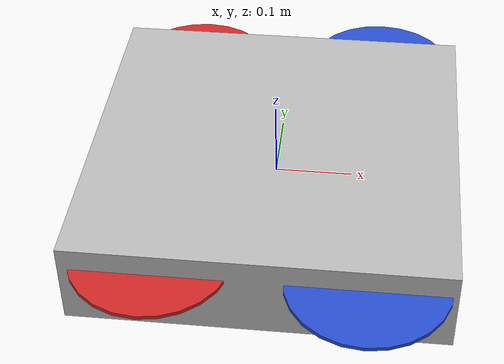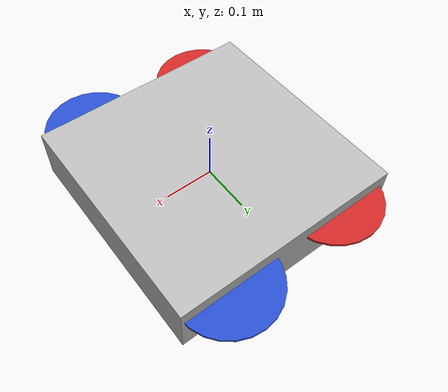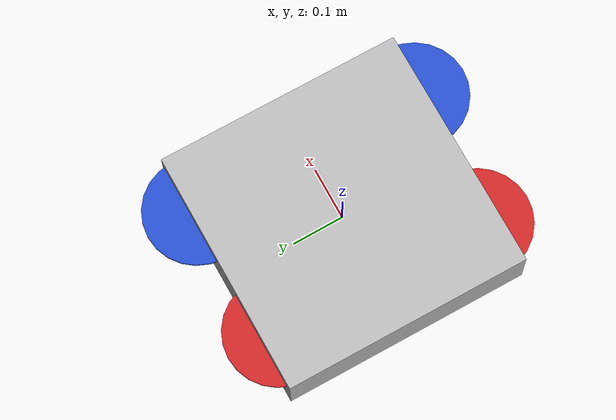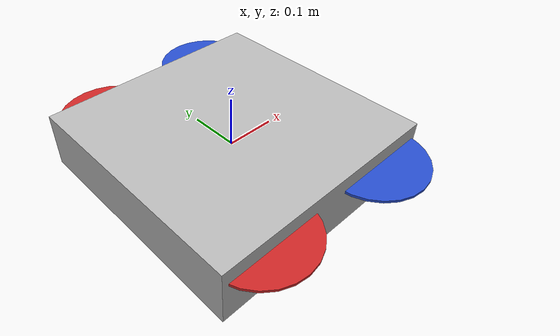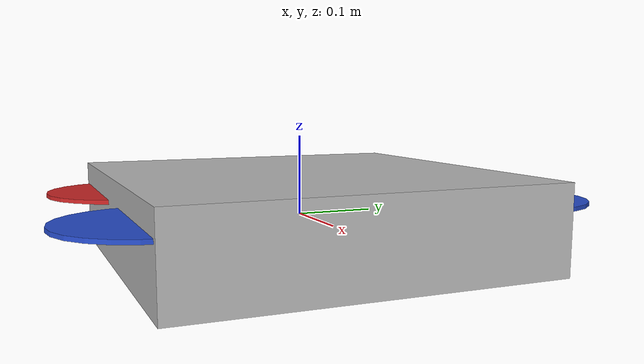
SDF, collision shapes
<sdf version='1.7'>
  <model name='iris'>
    <link name='uav0/base_link'>
      <inertial>
        <pose>0.007977 0 -0.002393 0 -0 0</pose>
        <mass>1.63003</mass>
        <inertia>
          <ixx>0.0348681</ixx>
          <ixy>-5.91781e-08</ixy>
          <ixz>0.000358969</ixz>
          <iyy>0.0472013</iyy>
          <iyz>1.24503e-08</iyz>
          <izz>0.0989008</izz>
        </inertia>
      </inertial>
      <collision name='uav0/base_link_inertia_collision'>
        <pose>0 0 0 0 -0 0</pose>
        <geometry>
          <box>
            <size>0.47 0.47 0.11</size>
          </box>
        </geometry>
      </collision>
      <collision name='uav0/base_link_fixed_joint_lump__uav0/vi_sensor/vi_sensor_link_collision_1'>
        <pose>0.1 0 -0.03 0 0.1 0</pose>
        <geometry>
          <box>
            <size>0.03 0.133 0.057</size>
          </box>
        </geometry>
      </collision>
      <collision name='uav0/base_link_fixed_joint_lump__uav0/vi_sensor/camera_depth_link_collision_2'>
        <pose>0.115574 0.055 -0.02503 0 0.1 0</pose>
        <geometry>
          <cylinder>
            <length>0.01</length>
            <radius>0.007</radius>
          </cylinder>
        </geometry>
        <surface>
          <contact>
            <ode/>
          </contact>
          <friction>
            <ode/>
          </friction>
        </surface>
      </collision>
      <collision name='uav0/base_link_fixed_joint_lump__uav0/vi_sensor/camera_left_link_collision_3'>
        <pose>0.115574 0.055 -0.02503 0 0.1 0</pose>
        <geometry>
          <cylinder>
            <length>0.01</length>
            <radius>0.007</radius>
          </cylinder>
        </geometry>
        <surface>
          <contact>
            <ode/>
          </contact>
          <friction>
            <ode/>
          </friction>
        </surface>
      </collision>
      <collision name='uav0/base_link_fixed_joint_lump__uav0/vi_sensor/camera_right_link_collision_4'>
        <pose>0.115574 -0.055 -0.02503 0 0.1 0</pose>
        <geometry>
          <cylinder>
            <length>0.01</length>
            <radius>0.007</radius>
          </cylinder>
        </geometry>
      </collision>
      <visual name='uav0/base_link_inertia_visual'>
        <pose>0 0 0 0 -0 0</pose>
        <geometry>
          <mesh>
            <scale>1 1 1</scale>
            <uri>model://iris_description/meshes/iris.dae</uri>
          </mesh>
        </geometry>
      </visual>
      <visual name='uav0/base_link_fixed_joint_lump__uav0/vi_sensor/vi_sensor_link_visual_1'>
        <pose>0.1 0 -0.03 0 0.1 0</pose>
        <geometry>
          <mesh>
            <scale>1 1 1</scale>
            <uri>model://iris_description/meshes/vi_sensor.dae</uri>
          </mesh>
        </geometry>
      </visual>
      <sensor name='uav0/vi_sensor_camera_{camera_suffix}' type='depth'>
        <always_on>1</always_on>
        <update_rate>30</update_rate>
        <camera>
          <horizontal_fov>2</horizontal_fov>
          <image>
            <format>L8</format>
            <width>640</width>
            <height>480</height>
          </image>
          <clip>
            <near>0.01</near>
            <far>10</far>
          </clip>
        </camera>
        <plugin name='uav0/vi_sensor_camera_{camera_suffix}' filename='libgazebo_ros_openni_kinect.so'>
          <robotNamespace>uav0/vi_sensor</robotNamespace>
          <alwaysOn>1</alwaysOn>
          <baseline>0.11</baseline>
          <updateRate>30.0</updateRate>
          <cameraName>camera_depth</cameraName>
          <imageTopicName>camera/image_raw</imageTopicName>
          <cameraInfoTopicName>camera/camera_info</cameraInfoTopicName>
          <depthImageTopicName>depth/disparity</depthImageTopicName>
          <depthImageCameraInfoTopicName>depth/camera_info</depthImageCameraInfoTopicName>
          <pointCloudTopicName>depth/points</pointCloudTopicName>
          <frameName>camera_depth_optical_center_link</frameName>
          <pointCloudCutoff>0.5</pointCloudCutoff>
          <pointCloudCutoffMax>10.0</pointCloudCutoffMax>
          <distortionK1>0.0</distortionK1>
          <distortionK2>0.0</distortionK2>
          <distortionK3>0.0</distortionK3>
          <distortionT1>0.0</distortionT1>
          <distortionT2>0.0</distortionT2>
        </plugin>
        <pose>0.115574 0.055 -0.02503 0 0.1 0</pose>
      </sensor>
      <sensor name='uav0/vi_sensor_stereo_camera' type='multicamera'>
        <update_rate>30</update_rate>
        <camera name='left'>
          <pose>0 0 0 0 -0 0</pose>
          <horizontal_fov>1.39626</horizontal_fov>
          <image>
            <width>752</width>
            <height>480</height>
            <format>L8</format>
          </image>
          <clip>
            <near>0.02</near>
            <far>30</far>
          </clip>
          <noise>
            <type>gaussian</type>
            <mean>0</mean>
            <stddev>0.007</stddev>
          </noise>
        </camera>
        <camera name='right'>
          <pose>0 -0.11 0 0 -0 0</pose>
          <horizontal_fov>1.39626</horizontal_fov>
          <image>
            <width>752</width>
            <height>480</height>
            <format>L8</format>
          </image>
          <clip>
            <near>0.02</near>
            <far>30</far>
          </clip>
          <noise>
            <type>gaussian</type>
            <mean>0</mean>
            <stddev>0.007</stddev>
          </noise>
        </camera>
        <plugin name='uav0/vi_sensor_stereo_camera_controller' filename='libgazebo_ros_multicamera.so'>
          <alwaysOn>1</alwaysOn>
          <updateRate>0.0</updateRate>
          <cameraName>vi_sensor</cameraName>
          <imageTopicName>image_raw</imageTopicName>
          <cameraInfoTopicName>camera_info</cameraInfoTopicName>
          <frameName>vi_sensor/camera_left_link</frameName>
          <hackBaseline>0.11</hackBaseline>
          <distortionK1>0.0</distortionK1>
          <distortionK2>0.0</distortionK2>
          <distortionK3>0.0</distortionK3>
          <distortionT1>0.0</distortionT1>
          <distortionT2>0.0</distortionT2>
        </plugin>
        <pose>0.115574 0.055 -0.02503 0 0.1 0</pose>
      </sensor>
    </link>
    <joint name='uav0/imu_joint' type='revolute'>
      <pose relative_to='uav0/base_link'>0 0 0 0 -0 0</pose>
      <parent>uav0/base_link</parent>
      <child>uav0/imu_link</child>
      <axis>
        <xyz>1 0 0</xyz>
        <limit>
          <lower>0</lower>
          <upper>0</upper>
          <effort>0</effort>
          <velocity>0</velocity>
        </limit>
        <dynamics>
          <spring_reference>0</spring_reference>
          <spring_stiffness>0</spring_stiffness>
        </dynamics>
      </axis>
    </joint>
    <link name='uav0/imu_link'>
      <pose relative_to='uav0/imu_joint'>0 0 0 0 -0 0</pose>
      <inertial>
        <pose>0 0 0 0 -0 0</pose>
        <mass>0.015</mass>
        <inertia>
          <ixx>1e-05</ixx>
          <ixy>0</ixy>
          <ixz>0</ixz>
          <iyy>1e-05</iyy>
          <iyz>0</iyz>
          <izz>1e-05</izz>
        </inertia>
      </inertial>
    </link>
    <joint name='uav0/imugt_joint' type='revolute'>
      <pose relative_to='uav0/base_link'>0 0 0 0 -0 0</pose>
      <parent>uav0/base_link</parent>
      <child>uav0/imugt_link</child>
      <axis>
        <xyz>1 0 0</xyz>
        <limit>
          <lower>0</lower>
          <upper>0</upper>
          <effort>0</effort>
          <velocity>0</velocity>
        </limit>
        <dynamics>
          <spring_reference>0</spring_reference>
          <spring_stiffness>0</spring_stiffness>
        </dynamics>
      </axis>
    </joint>
    <link name='uav0/imugt_link'>
      <pose relative_to='uav0/imugt_joint'>0 0 0 0 -0 0</pose>
      <inertial>
        <pose>0 0 0 0 -0 0</pose>
        <mass>1e-05</mass>
        <inertia>
          <ixx>1e-05</ixx>
          <ixy>0</ixy>
          <ixz>0</ixz>
          <iyy>1e-05</iyy>
          <iyz>0</iyz>
          <izz>1e-05</izz>
        </inertia>
      </inertial>
    </link>
    <joint name='uav0/odometry_sensor1_joint' type='revolute'>
      <pose relative_to='uav0/base_link'>0 0 0 0 -0 0</pose>
      <parent>uav0/base_link</parent>
      <child>uav0/odometry_sensor1_link</child>
      <axis>
        <xyz>1 0 0</xyz>
        <limit>
          <lower>0</lower>
          <upper>0</upper>
          <effort>0</effort>
          <velocity>0</velocity>
        </limit>
        <dynamics>
          <spring_reference>0</spring_reference>
          <spring_stiffness>0</spring_stiffness>
        </dynamics>
      </axis>
    </joint>
    <link name='uav0/odometry_sensor1_link'>
      <pose relative_to='uav0/odometry_sensor1_joint'>0 0 0 0 -0 0</pose>
      <inertial>
        <pose>0 0 0 0 -0 0</pose>
        <mass>1e-05</mass>
        <inertia>
          <ixx>1e-05</ixx>
          <ixy>0</ixy>
          <ixz>0</ixz>
          <iyy>1e-05</iyy>
          <iyz>0</iyz>
          <izz>1e-05</izz>
        </inertia>
      </inertial>
    </link>
    <joint name='uav0/odometry_sensorgt_joint' type='revolute'>
      <pose relative_to='uav0/base_link'>0 0 0 0 -0 0</pose>
      <parent>uav0/base_link</parent>
      <child>uav0/odometry_sensorgt_link</child>
      <axis>
        <xyz>1 0 0</xyz>
        <limit>
          <lower>0</lower>
          <upper>0</upper>
          <effort>0</effort>
          <velocity>0</velocity>
        </limit>
        <dynamics>
          <spring_reference>0</spring_reference>
          <spring_stiffness>0</spring_stiffness>
        </dynamics>
      </axis>
    </joint>
    <link name='uav0/odometry_sensorgt_link'>
      <pose relative_to='uav0/odometry_sensorgt_joint'>0 0 0 0 -0 0</pose>
      <inertial>
        <pose>0 0 0 0 -0 0</pose>
        <mass>1e-05</mass>
        <inertia>
          <ixx>1e-05</ixx>
          <ixy>0</ixy>
          <ixz>0</ixz>
          <iyy>1e-05</iyy>
          <iyz>0</iyz>
          <izz>1e-05</izz>
        </inertia>
      </inertial>
    </link>
    <joint name='uav0/rotor_0_joint' type='revolute'>
      <pose relative_to='uav0/base_link'>0.13 -0.22 0.023 0 -0 0</pose>
      <parent>uav0/base_link</parent>
      <child>uav0/rotor_0</child>
      <axis>
        <xyz>0 0 1</xyz>
        <limit>
          <lower>-1e+16</lower>
          <upper>1e+16</upper>
        </limit>
        <dynamics>
          <spring_reference>0</spring_reference>
          <spring_stiffness>0</spring_stiffness>
        </dynamics>
      </axis>
    </joint>
    <link name='uav0/rotor_0'>
      <pose relative_to='uav0/rotor_0_joint'>0 0 0 0 -0 0</pose>
      <inertial>
        <pose>0 0 0 0 -0 0</pose>
        <mass>0.005</mass>
        <inertia>
          <ixx>9.75e-07</ixx>
          <ixy>0</ixy>
          <ixz>0</ixz>
          <iyy>4.17041e-05</iyy>
          <iyz>0</iyz>
          <izz>4.26041e-05</izz>
        </inertia>
      </inertial>
      <collision name='uav0/rotor_0_collision'>
        <pose>0 0 0 0 -0 0</pose>
        <geometry>
          <cylinder>
            <length>0.005</length>
            <radius>0.1</radius>
          </cylinder>
        </geometry>
        <surface>
          <contact>
            <ode/>
          </contact>
          <friction>
            <ode/>
          </friction>
        </surface>
      </collision>
      <visual name='uav0/rotor_0_visual'>
        <pose>0 0 0 0 -0 0</pose>
        <geometry>
          <mesh>
            <scale>0.1 0.1 0.1</scale>
            <uri>model://iris_description/meshes/propeller_ccw.dae</uri>
          </mesh>
        </geometry>
        <material>
          <script>
            <name>Gazebo/Blue</name>
            <uri>file://media/materials/scripts/gazebo.material</uri>
          </script>
        </material>
      </visual>
    </link>
    <joint name='uav0/rotor_1_joint' type='revolute'>
      <pose relative_to='uav0/base_link'>-0.13 0.2 0.023 0 -0 0</pose>
      <parent>uav0/base_link</parent>
      <child>uav0/rotor_1</child>
      <axis>
        <xyz>0 0 1</xyz>
        <limit>
          <lower>-1e+16</lower>
          <upper>1e+16</upper>
        </limit>
        <dynamics>
          <spring_reference>0</spring_reference>
          <spring_stiffness>0</spring_stiffness>
        </dynamics>
      </axis>
    </joint>
    <link name='uav0/rotor_1'>
      <pose relative_to='uav0/rotor_1_joint'>0 0 0 0 -0 0</pose>
      <inertial>
        <pose>0 0 0 0 -0 0</pose>
        <mass>0.005</mass>
        <inertia>
          <ixx>9.75e-07</ixx>
          <ixy>0</ixy>
          <ixz>0</ixz>
          <iyy>4.17041e-05</iyy>
          <iyz>0</iyz>
          <izz>4.26041e-05</izz>
        </inertia>
      </inertial>
      <collision name='uav0/rotor_1_collision'>
        <pose>0 0 0 0 -0 0</pose>
        <geometry>
          <cylinder>
            <length>0.005</length>
            <radius>0.1</radius>
          </cylinder>
        </geometry>
        <surface>
          <contact>
            <ode/>
          </contact>
          <friction>
            <ode/>
          </friction>
        </surface>
      </collision>
      <visual name='uav0/rotor_1_visual'>
        <pose>0 0 0 0 -0 0</pose>
        <geometry>
          <mesh>
            <scale>0.1 0.1 0.1</scale>
            <uri>model://iris_description/meshes/propeller_ccw.dae</uri>
          </mesh>
        </geometry>
        <material>
          <script>
            <name>Gazebo/Red</name>
            <uri>file://media/materials/scripts/gazebo.material</uri>
          </script>
        </material>
      </visual>
    </link>
    <joint name='uav0/rotor_2_joint' type='revolute'>
      <pose relative_to='uav0/base_link'>0.13 0.22 0.023 0 -0 0</pose>
      <parent>uav0/base_link</parent>
      <child>uav0/rotor_2</child>
      <axis>
        <xyz>0 0 1</xyz>
        <limit>
          <lower>-1e+16</lower>
          <upper>1e+16</upper>
        </limit>
        <dynamics>
          <spring_reference>0</spring_reference>
          <spring_stiffness>0</spring_stiffness>
        </dynamics>
      </axis>
    </joint>
    <link name='uav0/rotor_2'>
      <pose relative_to='uav0/rotor_2_joint'>0 0 0 0 -0 0</pose>
      <inertial>
        <pose>0 0 0 0 -0 0</pose>
        <mass>0.005</mass>
        <inertia>
          <ixx>9.75e-07</ixx>
          <ixy>0</ixy>
          <ixz>0</ixz>
          <iyy>4.17041e-05</iyy>
          <iyz>0</iyz>
          <izz>4.26041e-05</izz>
        </inertia>
      </inertial>
      <collision name='uav0/rotor_2_collision'>
        <pose>0 0 0 0 -0 0</pose>
        <geometry>
          <cylinder>
            <length>0.005</length>
            <radius>0.1</radius>
          </cylinder>
        </geometry>
        <surface>
          <contact>
            <ode/>
          </contact>
          <friction>
            <ode/>
          </friction>
        </surface>
      </collision>
      <visual name='uav0/rotor_2_visual'>
        <pose>0 0 0 0 -0 0</pose>
        <geometry>
          <mesh>
            <scale>0.1 0.1 0.1</scale>
            <uri>model://iris_description/meshes/propeller_cw.dae</uri>
          </mesh>
        </geometry>
        <material>
          <script>
            <name>Gazebo/Blue</name>
            <uri>file://media/materials/scripts/gazebo.material</uri>
          </script>
        </material>
      </visual>
    </link>
    <joint name='uav0/rotor_3_joint' type='revolute'>
      <pose relative_to='uav0/base_link'>-0.13 -0.2 0.023 0 -0 0</pose>
      <parent>uav0/base_link</parent>
      <child>uav0/rotor_3</child>
      <axis>
        <xyz>0 0 1</xyz>
        <limit>
          <lower>-1e+16</lower>
          <upper>1e+16</upper>
        </limit>
        <dynamics>
          <spring_reference>0</spring_reference>
          <spring_stiffness>0</spring_stiffness>
        </dynamics>
      </axis>
    </joint>
    <link name='uav0/rotor_3'>
      <pose relative_to='uav0/rotor_3_joint'>0 0 0 0 -0 0</pose>
      <inertial>
        <pose>0 0 0 0 -0 0</pose>
        <mass>0.005</mass>
        <inertia>
          <ixx>9.75e-07</ixx>
          <ixy>0</ixy>
          <ixz>0</ixz>
          <iyy>4.17041e-05</iyy>
          <iyz>0</iyz>
          <izz>4.26041e-05</izz>
        </inertia>
      </inertial>
      <collision name='uav0/rotor_3_collision'>
        <pose>0 0 0 0 -0 0</pose>
        <geometry>
          <cylinder>
            <length>0.005</length>
            <radius>0.1</radius>
          </cylinder>
        </geometry>
        <surface>
          <contact>
            <ode/>
          </contact>
          <friction>
            <ode/>
          </friction>
        </surface>
      </collision>
      <visual name='uav0/rotor_3_visual'>
        <pose>0 0 0 0 -0 0</pose>
        <geometry>
          <mesh>
            <scale>0.1 0.1 0.1</scale>
            <uri>model://iris_description/meshes/propeller_cw.dae</uri>
          </mesh>
        </geometry>
        <material>
          <script>
            <name>Gazebo/Red</name>
            <uri>file://media/materials/scripts/gazebo.material</uri>
          </script>
        </material>
      </visual>
    </link>
    <joint name='uav0/vi_sensor/ground_truth/odometry_sensor_joint' type='revolute'>
      <pose relative_to='uav0/base_link'>0.1 0 -0.03 0 0.1 0</pose>
      <parent>uav0/base_link</parent>
      <child>uav0/vi_sensor/ground_truth/odometry_sensor_link</child>
      <axis>
        <xyz>1 0 0</xyz>
        <limit>
          <lower>0</lower>
          <upper>0</upper>
          <effort>0</effort>
          <velocity>0</velocity>
        </limit>
        <dynamics>
          <spring_reference>0</spring_reference>
          <spring_stiffness>0</spring_stiffness>
        </dynamics>
      </axis>
    </joint>
    <link name='uav0/vi_sensor/ground_truth/odometry_sensor_link'>
      <pose relative_to='uav0/vi_sensor/ground_truth/odometry_sensor_joint'>0 0 0 0 -0 0</pose>
      <inertial>
        <pose>0 0 0 0 -0 0</pose>
        <mass>1e-05</mass>
        <inertia>
          <ixx>1e-05</ixx>
          <ixy>0</ixy>
          <ixz>0</ixz>
          <iyy>1e-05</iyy>
          <iyz>0</iyz>
          <izz>1e-05</izz>
        </inertia>
      </inertial>
    </link>
    <joint name='uav0/vi_sensor/imu_joint' type='revolute'>
      <pose relative_to='uav0/base_link'>0.116053 0 -0.020254 0 0.1 0</pose>
      <parent>uav0/base_link</parent>
      <child>uav0/vi_sensor/imu_link</child>
      <axis>
        <xyz>1 0 0</xyz>
        <limit>
          <lower>0</lower>
          <upper>0</upper>
          <effort>0</effort>
          <velocity>0</velocity>
        </limit>
        <dynamics>
          <spring_reference>0</spring_reference>
          <spring_stiffness>0</spring_stiffness>
        </dynamics>
      </axis>
    </joint>
    <link name='uav0/vi_sensor/imu_link'>
      <pose relative_to='uav0/vi_sensor/imu_joint'>0 0 0 0 -0 0</pose>
      <inertial>
        <pose>0 0 0 0 -0 0</pose>
        <mass>0.015</mass>
        <inertia>
          <ixx>1e-05</ixx>
          <ixy>0</ixy>
          <ixz>0</ixz>
          <iyy>1e-05</iyy>
          <iyz>0</iyz>
          <izz>1e-05</izz>
        </inertia>
      </inertial>
    </link>
    <plugin name='uav0/rotor_0_blade_1' filename='libLiftDragPlugin.so'>
      <a0>0.3</a0>
      <alpha_stall>1.4</alpha_stall>
      <cla>4.2500</cla>
      <cda>0.10</cda>
      <cma>0.00</cma>
      <cla_stall>-0.025</cla_stall>
      <cda_stall>0.0</cda_stall>
      <cma_stall>0.0</cma_stall>
      <area>0.002</area>
      <air_density>1.2041</air_density>
      <cp>0.084 0 0</cp>
      <forward>0 1 0</forward>
      <upward>0 0 1</upward>
      <link_name>uav0::uav0/rotor_0</link_name>
    </plugin>
    <plugin name='uav0/rotor_0_blade_2' filename='libLiftDragPlugin.so'>
      <a0>0.3</a0>
      <alpha_stall>1.4</alpha_stall>
      <cla>4.2500</cla>
      <cda>0.10</cda>
      <cma>0.00</cma>
      <cla_stall>-0.025</cla_stall>
      <cda_stall>0.0</cda_stall>
      <cma_stall>0.0</cma_stall>
      <area>0.002</area>
      <air_density>1.2041</air_density>
      <cp>-0.084 0 0</cp>
      <forward>0 -1 0</forward>
      <upward>0 0 1</upward>
      <link_name>uav0::uav0/rotor_0</link_name>
    </plugin>
    <plugin name='uav0/rotor_1_blade_1' filename='libLiftDragPlugin.so'>
      <a0>0.3</a0>
      <alpha_stall>1.4</alpha_stall>
      <cla>4.2500</cla>
      <cda>0.10</cda>
      <cma>0.00</cma>
      <cla_stall>-0.025</cla_stall>
      <cda_stall>0.0</cda_stall>
      <cma_stall>0.0</cma_stall>
      <area>0.002</area>
      <air_density>1.2041</air_density>
      <cp>0.084 0 0</cp>
      <forward>0 1 0</forward>
      <upward>0 0 1</upward>
      <link_name>uav0::uav0/rotor_1</link_name>
    </plugin>
    <plugin name='uav0/rotor_1_blade_2' filename='libLiftDragPlugin.so'>
      <a0>0.3</a0>
      <alpha_stall>1.4</alpha_stall>
      <cla>4.2500</cla>
      <cda>0.10</cda>
      <cma>0.00</cma>
      <cla_stall>-0.025</cla_stall>
      <cda_stall>0.0</cda_stall>
      <cma_stall>0.0</cma_stall>
      <area>0.002</area>
      <air_density>1.2041</air_density>
      <cp>-0.084 0 0</cp>
      <forward>0 -1 0</forward>
      <upward>0 0 1</upward>
      <link_name>uav0::uav0/rotor_1</link_name>
    </plugin>
    <plugin name='uav0/rotor_2_blade_1' filename='libLiftDragPlugin.so'>
      <a0>0.3</a0>
      <alpha_stall>1.4</alpha_stall>
      <cla>4.2500</cla>
      <cda>0.10</cda>
      <cma>0.00</cma>
      <cla_stall>-0.025</cla_stall>
      <cda_stall>0.0</cda_stall>
      <cma_stall>0.0</cma_stall>
      <area>0.002</area>
      <air_density>1.2041</air_density>
      <cp>0.084 0 0</cp>
      <forward>0 1 0</forward>
      <upward>0 0 1</upward>
      <link_name>uav0::uav0/rotor_2</link_name>
    </plugin>
    <plugin name='uav0/rotor_2_blade_2' filename='libLiftDragPlugin.so'>
      <a0>0.3</a0>
      <alpha_stall>1.4</alpha_stall>
      <cla>4.2500</cla>
      <cda>0.10</cda>
      <cma>0.00</cma>
      <cla_stall>-0.025</cla_stall>
      <cda_stall>0.0</cda_stall>
      <cma_stall>0.0</cma_stall>
      <area>0.002</area>
      <air_density>1.2041</air_density>
      <cp>-0.084 0 0</cp>
      <forward>0 -1 0</forward>
      <upward>0 0 1</upward>
      <link_name>uav0::uav0/rotor_2</link_name>
    </plugin>
    <plugin name='uav0/rotor_3_blade_1' filename='libLiftDragPlugin.so'>
      <a0>0.3</a0>
      <alpha_stall>1.4</alpha_stall>
      <cla>4.2500</cla>
      <cda>0.10</cda>
      <cma>0.00</cma>
      <cla_stall>-0.025</cla_stall>
      <cda_stall>0.0</cda_stall>
      <cma_stall>0.0</cma_stall>
      <area>0.002</area>
      <air_density>1.2041</air_density>
      <cp>0.084 0 0</cp>
      <forward>0 1 0</forward>
      <upward>0 0 1</upward>
      <link_name>uav0::uav0/rotor_3</link_name>
    </plugin>
    <plugin name='uav0/rotor_3_blade_2' filename='libLiftDragPlugin.so'>
      <a0>0.3</a0>
      <alpha_stall>1.4</alpha_stall>
      <cla>4.2500</cla>
      <cda>0.10</cda>
      <cma>0.00</cma>
      <cla_stall>-0.025</cla_stall>
      <cda_stall>0.0</cda_stall>
      <cma_stall>0.0</cma_stall>
      <area>0.002</area>
      <air_density>1.2041</air_density>
      <cp>-0.084 0 0</cp>
      <forward>0 -1 0</forward>
      <upward>0 0 1</upward>
      <link_name>uav0::uav0/rotor_3</link_name>
    </plugin>
    <plugin name='odometry_sensor1' filename='librotors_gazebo_odometry_plugin.so'>
      <linkName>uav0/odometry_sensor1_link</linkName>
      <robotNamespace>uav0</robotNamespace>
      <poseTopic>odometry_sensor1/pose</poseTopic>
      <poseWithCovarianceTopic>odometry_sensor1/pose_with_covariance</poseWithCovarianceTopic>
      <positionTopic>odometry_sensor1/position</positionTopic>
      <transformTopic>odometry_sensor1/transform</transformTopic>
      <odometryTopic>odometry_sensor1/odometry</odometryTopic>
      <parentFrameId>world</parentFrameId>
      <childFrameId>uav0/odometry_sensor1</childFrameId>
      <measurementDivisor>1</measurementDivisor>
      <measurementDelay>0</measurementDelay>
      <unknownDelay>0.0</unknownDelay>
      <noiseNormalPosition>0 0 0</noiseNormalPosition>
      <noiseNormalQuaternion>0 0 0</noiseNormalQuaternion>
      <noiseNormalLinearVelocity>0 0 0</noiseNormalLinearVelocity>
      <noiseNormalAngularVelocity>0 0 0</noiseNormalAngularVelocity>
      <noiseUniformPosition>0 0 0</noiseUniformPosition>
      <noiseUniformQuaternion>0 0 0</noiseUniformQuaternion>
      <noiseUniformLinearVelocity>0 0 0</noiseUniformLinearVelocity>
      <noiseUniformAngularVelocity>0 0 0</noiseUniformAngularVelocity>
    </plugin>
    <plugin name='odometry_sensor' filename='librotors_gazebo_odometry_plugin.so'>
      <linkName>uav0/vi_sensor/ground_truth/odometry_sensor_link</linkName>
      <robotNamespace>uav0/vi_sensor/ground_truth</robotNamespace>
      <poseTopic>pose</poseTopic>
      <poseWithCovarianceTopic>pose_with_covariance</poseWithCovarianceTopic>
      <positionTopic>position</positionTopic>
      <transformTopic>transform</transformTopic>
      <odometryTopic>odometry</odometryTopic>
      <parentFrameId>world</parentFrameId>
      <childFrameId>uav0/vi_sensor/base_link</childFrameId>
      <measurementDivisor>1</measurementDivisor>
      <measurementDelay>0</measurementDelay>
      <unknownDelay>0.0</unknownDelay>
      <noiseNormalPosition>0 0 0</noiseNormalPosition>
      <noiseNormalQuaternion>0 0 0</noiseNormalQuaternion>
      <noiseNormalLinearVelocity>0 0 0</noiseNormalLinearVelocity>
      <noiseNormalAngularVelocity>0 0 0</noiseNormalAngularVelocity>
      <noiseUniformPosition>0 0 0</noiseUniformPosition>
      <noiseUniformQuaternion>0 0 0</noiseUniformQuaternion>
      <noiseUniformLinearVelocity>0 0 0</noiseUniformLinearVelocity>
      <noiseUniformAngularVelocity>0 0 0</noiseUniformAngularVelocity>
    </plugin>
    <plugin name='rotors_gazebo_imu_plugin' filename='librotors_gazebo_imu_plugin.so'>
      <robotNamespace>uav0/vi_sensor</robotNamespace>
      <linkName>uav0/vi_sensor/imu_link</linkName>
      <imuTopic>imu</imuTopic>
      <gyroscopeNoiseDensity>0.0003394</gyroscopeNoiseDensity>
      <gyroscopeRandomWalk>3.8785e-05</gyroscopeRandomWalk>
      <gyroscopeBiasCorrelationTime>1000.0</gyroscopeBiasCorrelationTime>
      <gyroscopeTurnOnBiasSigma>0.0087</gyroscopeTurnOnBiasSigma>
      <accelerometerNoiseDensity>0.004</accelerometerNoiseDensity>
      <accelerometerRandomWalk>0.006</accelerometerRandomWalk>
      <accelerometerBiasCorrelationTime>300.0</accelerometerBiasCorrelationTime>
      <accelerometerTurnOnBiasSigma>0.196</accelerometerTurnOnBiasSigma>
    </plugin>
    <plugin name='rotors_gazebo_imu_plugin' filename='librotors_gazebo_imu_plugin.so'>
      <robotNamespace>uav0</robotNamespace>
      <linkName>uav0/imu_link</linkName>
      <imuTopic>imu</imuTopic>
      <gyroscopeNoiseDensity>0.0003394</gyroscopeNoiseDensity>
      <gyroscopeRandomWalk>3.8785e-05</gyroscopeRandomWalk>
      <gyroscopeBiasCorrelationTime>1000.0</gyroscopeBiasCorrelationTime>
      <gyroscopeTurnOnBiasSigma>0.0087</gyroscopeTurnOnBiasSigma>
      <accelerometerNoiseDensity>0.004</accelerometerNoiseDensity>
      <accelerometerRandomWalk>0.006</accelerometerRandomWalk>
      <accelerometerBiasCorrelationTime>300.0</accelerometerBiasCorrelationTime>
      <accelerometerTurnOnBiasSigma>0.196</accelerometerTurnOnBiasSigma>
    </plugin>
    <plugin name='rotors_gazebo_imugt_plugin' filename='librotors_gazebo_imu_plugin.so'>
      <robotNamespace>uav0</robotNamespace>
      <linkName>uav0/imugt_link</linkName>
      <imuTopic>ground_truth/imu</imuTopic>
      <gyroscopeNoiseDensity>0.0</gyroscopeNoiseDensity>
      <gyroscopeRandomWalk>0.0</gyroscopeRandomWalk>
      <gyroscopeBiasCorrelationTime>1000.0</gyroscopeBiasCorrelationTime>
      <gyroscopeTurnOnBiasSigma>0.0</gyroscopeTurnOnBiasSigma>
      <accelerometerNoiseDensity>0.0</accelerometerNoiseDensity>
      <accelerometerRandomWalk>0.0</accelerometerRandomWalk>
      <accelerometerBiasCorrelationTime>300.0</accelerometerBiasCorrelationTime>
      <accelerometerTurnOnBiasSigma>0.0</accelerometerTurnOnBiasSigma>
    </plugin>
    <plugin name='odometry_sensorgt' filename='librotors_gazebo_odometry_plugin.so'>
      <linkName>uav0/odometry_sensorgt_link</linkName>
      <robotNamespace>uav0</robotNamespace>
      <poseTopic>ground_truth/pose</poseTopic>
      <poseWithCovarianceTopic>ground_truth/pose_with_covariance</poseWithCovarianceTopic>
      <positionTopic>ground_truth/position</positionTopic>
      <transformTopic>ground_truth/transform</transformTopic>
      <odometryTopic>ground_truth/odometry</odometryTopic>
      <parentFrameId>world</parentFrameId>
      <childFrameId>uav0/base_link</childFrameId>
      <measurementDivisor>1</measurementDivisor>
      <measurementDelay>0</measurementDelay>
      <unknownDelay>0.0</unknownDelay>
      <noiseNormalPosition>0 0 0</noiseNormalPosition>
      <noiseNormalQuaternion>0 0 0</noiseNormalQuaternion>
      <noiseNormalLinearVelocity>0 0 0</noiseNormalLinearVelocity>
      <noiseNormalAngularVelocity>0 0 0</noiseNormalAngularVelocity>
      <noiseUniformPosition>0 0 0</noiseUniformPosition>
      <noiseUniformQuaternion>0 0 0</noiseUniformQuaternion>
      <noiseUniformLinearVelocity>0 0 0</noiseUniformLinearVelocity>
      <noiseUniformAngularVelocity>0 0 0</noiseUniformAngularVelocity>
    </plugin>
    <static>0</static>
    <plugin name='arducopter_plugin' filename='libArduPilotPlugin.so'>
      <fdm_addr>127.0.0.1</fdm_addr>
      <fdm_port_in>9002</fdm_port_in>
      <fdm_port_out>9003</fdm_port_out>
      <modelXYZToAirplaneXForwardZDown>0 0 0 3.141593 0 0</modelXYZToAirplaneXForwardZDown>
      <gazeboXYZToNED>0 0 0 3.141593 0 0</gazeboXYZToNED>
      <imuName>uav0::uav0/imu_link</imuName>
      <connectionTimeoutMaxCount>5</connectionTimeoutMaxCount>
      <control channel='0'>
        <type>VELOCITY</type>
        <offset>0</offset>
        <p_gain>0.20</p_gain>
        <i_gain>0</i_gain>
        <d_gain>0</d_gain>
        <i_max>0</i_max>
        <i_min>0</i_min>
        <cmd_max>2.5</cmd_max>
        <cmd_min>-2.5</cmd_min>
        <jointName>uav0::uav0/rotor_0_joint</jointName>
        <multiplier>838</multiplier>
        <controlVelocitySlowdownSim>1</controlVelocitySlowdownSim>
      </control>
      <control channel='1'>
        <type>VELOCITY</type>
        <offset>0</offset>
        <p_gain>0.20</p_gain>
        <i_gain>0</i_gain>
        <d_gain>0</d_gain>
        <i_max>0</i_max>
        <i_min>0</i_min>
        <cmd_max>2.5</cmd_max>
        <cmd_min>-2.5</cmd_min>
        <jointName>uav0::uav0/rotor_1_joint</jointName>
        <multiplier>838</multiplier>
        <controlVelocitySlowdownSim>1</controlVelocitySlowdownSim>
      </control>
      <control channel='2'>
        <type>VELOCITY</type>
        <offset>0</offset>
        <p_gain>0.20</p_gain>
        <i_gain>0</i_gain>
        <d_gain>0</d_gain>
        <i_max>0</i_max>
        <i_min>0</i_min>
        <cmd_max>2.5</cmd_max>
        <cmd_min>-2.5</cmd_min>
        <jointName>uav0::uav0/rotor_2_joint</jointName>
        <multiplier>-838</multiplier>
        <controlVelocitySlowdownSim>1</controlVelocitySlowdownSim>
      </control>
      <control channel='3'>
        <type>VELOCITY</type>
        <offset>0</offset>
        <p_gain>0.20</p_gain>
        <i_gain>0</i_gain>
        <d_gain>0</d_gain>
        <i_max>0</i_max>
        <i_min>0</i_min>
        <cmd_max>2.5</cmd_max>
        <cmd_min>-2.5</cmd_min>
        <jointName>uav0::uav0/rotor_3_joint</jointName>
        <multiplier>-838</multiplier>
        <controlVelocitySlowdownSim>1</controlVelocitySlowdownSim>
      </control>
    </plugin>
  </model>
</sdf>
